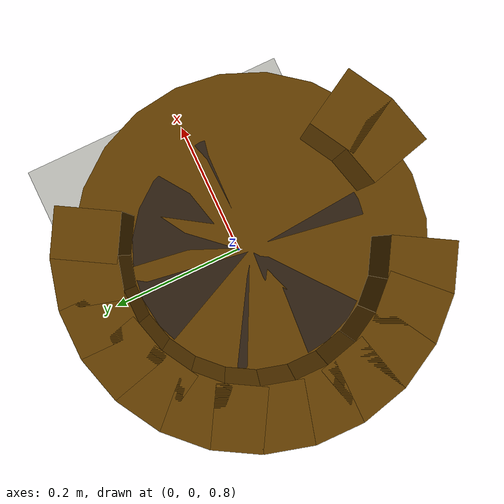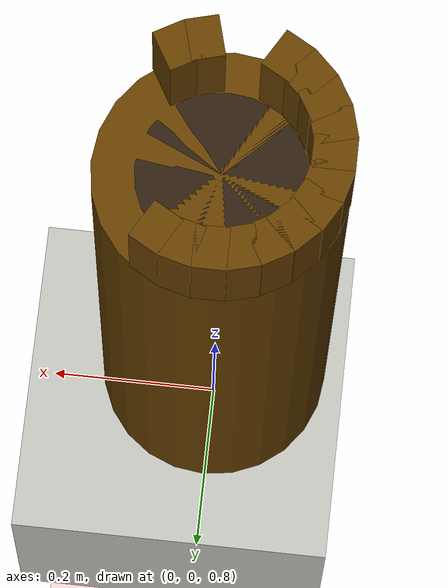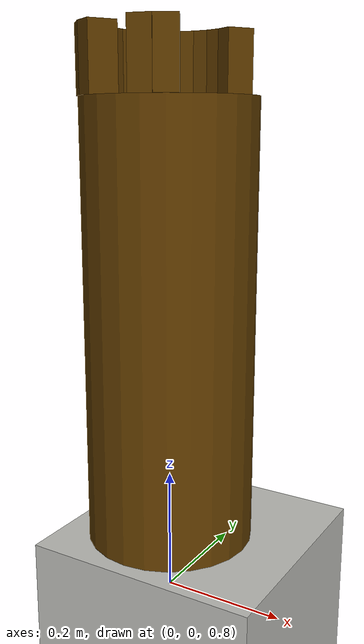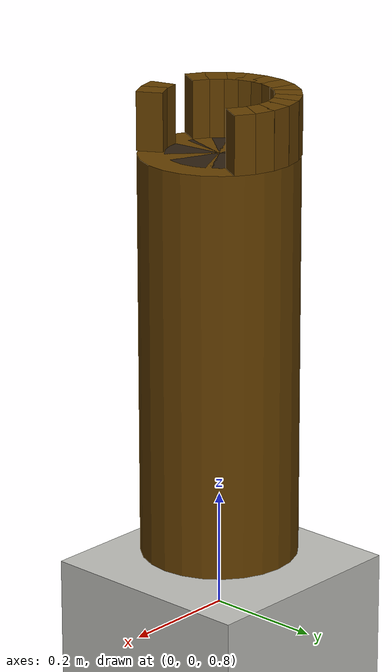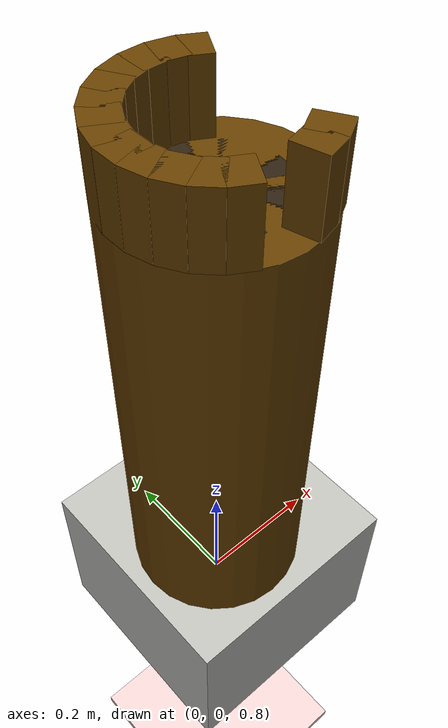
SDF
<sdf version="1.9">
 <world name="robocon_2027">
  <model name="robocon_2027_field">
   <static>true</static>
   <link name="ground_collision">
    <pose>0.000000 0.000000 -0.010000 0.000000 0.000000 0.000000</pose>
    <collision name="collision">
     <geometry><box><size>11.000000 11.000000 0.020000</size></box></geometry>
    </collision>
    <visual name="visual">
     <geometry><box><size>11.000000 11.000000 0.020000</size></box></geometry>
     <material>
      <ambient>0.941176 0.823529 0.823529 1</ambient>
      <diffuse>0.941176 0.823529 0.823529 1</diffuse>
      <specular>0.08 0.08 0.08 1</specular>
      <double_sided>true</double_sided>
     </material>
    </visual>
   </link>
   <link name="l2_platform">
    <pose>0.000000 0.000000 0.750000 0.000000 0.000000 0.000000</pose>
    <collision name="collision">
     <geometry><box><size>3.000000 3.000000 0.300000</size></box></geometry>
    </collision>
    <visual name="visual">
     <geometry><box><size>3.000000 3.000000 0.300000</size></box></geometry>
     <material>
      <ambient>0.745098 0.745098 0.725490 1</ambient>
      <diffuse>0.745098 0.745098 0.725490 1</diffuse>
      <specular>0.08 0.08 0.08 1</specular>
      <double_sided>true</double_sided>
     </material>
    </visual>
   </link>
   <link name="central_pillar_body">
    <pose>0.000000 0.000000 1.250000 0.000000 0.000000 0.000000</pose>
    <collision name="collision">
     <geometry><cylinder><radius>0.135000</radius><length>0.700000</length></cylinder></geometry>
    </collision>
    <visual name="visual">
     <geometry><cylinder><radius>0.135000</radius><length>0.700000</length></cylinder></geometry>
     <material>
      <ambient>0.392157 0.243137 0.000000 1</ambient>
      <diffuse>0.392157 0.243137 0.000000 1</diffuse>
      <specular>0.08 0.08 0.08 1</specular>
      <double_sided>true</double_sided>
     </material>
    </visual>
   </link>
   <link name="central_pillar_cup_bottom">
    <pose>0.000000 0.000000 1.595000 0.000000 0.000000 0.000000</pose>
    <collision name="collision">
     <geometry><cylinder><radius>0.090000</radius><length>0.010000</length></cylinder></geometry>
    </collision>
    <visual name="visual">
     <geometry><cylinder><radius>0.090000</radius><length>0.010000</length></cylinder></geometry>
     <material>
      <ambient>0.176471 0.121569 0.062745 1</ambient>
      <diffuse>0.176471 0.121569 0.062745 1</diffuse>
      <specular>0.08 0.08 0.08 1</specular>
      <double_sided>true</double_sided>
     </material>
    </visual>
   </link>
   <link name="central_pillar_cup_ring_04">
    <pose>0.056250 0.097428 1.650000 0.000000 0.000000 1.047198</pose>
    <collision name="collision">
     <geometry><box><size>0.045000 0.035343 0.100000</size></box></geometry>
    </collision>
    <visual name="visual">
     <geometry><box><size>0.045000 0.035343 0.100000</size></box></geometry>
     <material>
      <ambient>0.392157 0.243137 0.000000 1</ambient>
      <diffuse>0.392157 0.243137 0.000000 1</diffuse>
      <specular>0.08 0.08 0.08 1</specular>
      <double_sided>true</double_sided>
     </material>
    </visual>
   </link>
   <link name="central_pillar_cup_ring_05">
    <pose>0.029117 0.108667 1.650000 0.000000 0.000000 1.308997</pose>
    <collision name="collision">
     <geometry><box><size>0.045000 0.035343 0.100000</size></box></geometry>
    </collision>
    <visual name="visual">
     <geometry><box><size>0.045000 0.035343 0.100000</size></box></geometry>
     <material>
      <ambient>0.392157 0.243137 0.000000 1</ambient>
      <diffuse>0.392157 0.243137 0.000000 1</diffuse>
      <specular>0.08 0.08 0.08 1</specular>
      <double_sided>true</double_sided>
     </material>
    </visual>
   </link>
   <link name="central_pillar_cup_ring_06">
    <pose>0.000000 0.112500 1.650000 0.000000 0.000000 1.570796</pose>
    <collision name="collision">
     <geometry><box><size>0.045000 0.035343 0.100000</size></box></geometry>
    </collision>
    <visual name="visual">
     <geometry><box><size>0.045000 0.035343 0.100000</size></box></geometry>
     <material>
      <ambient>0.392157 0.243137 0.000000 1</ambient>
      <diffuse>0.392157 0.243137 0.000000 1</diffuse>
      <specular>0.08 0.08 0.08 1</specular>
      <double_sided>true</double_sided>
     </material>
    </visual>
   </link>
   <link name="central_pillar_cup_ring_07">
    <pose>-0.029117 0.108667 1.650000 0.000000 0.000000 1.832596</pose>
    <collision name="collision">
     <geometry><box><size>0.045000 0.035343 0.100000</size></box></geometry>
    </collision>
    <visual name="visual">
     <geometry><box><size>0.045000 0.035343 0.100000</size></box></geometry>
     <material>
      <ambient>0.392157 0.243137 0.000000 1</ambient>
      <diffuse>0.392157 0.243137 0.000000 1</diffuse>
      <specular>0.08 0.08 0.08 1</specular>
      <double_sided>true</double_sided>
     </material>
    </visual>
   </link>
   <link name="central_pillar_cup_ring_08">
    <pose>-0.056250 0.097428 1.650000 0.000000 0.000000 2.094395</pose>
    <collision name="collision">
     <geometry><box><size>0.045000 0.035343 0.100000</size></box></geometry>
    </collision>
    <visual name="visual">
     <geometry><box><size>0.045000 0.035343 0.100000</size></box></geometry>
     <material>
      <ambient>0.392157 0.243137 0.000000 1</ambient>
      <diffuse>0.392157 0.243137 0.000000 1</diffuse>
      <specular>0.08 0.08 0.08 1</specular>
      <double_sided>true</double_sided>
     </material>
    </visual>
   </link>
   <link name="central_pillar_cup_ring_09">
    <pose>-0.079550 0.079550 1.650000 0.000000 0.000000 2.356194</pose>
    <collision name="collision">
     <geometry><box><size>0.045000 0.035343 0.100000</size></box></geometry>
    </collision>
    <visual name="visual">
     <geometry><box><size>0.045000 0.035343 0.100000</size></box></geometry>
     <material>
      <ambient>0.392157 0.243137 0.000000 1</ambient>
      <diffuse>0.392157 0.243137 0.000000 1</diffuse>
      <specular>0.08 0.08 0.08 1</specular>
      <double_sided>true</double_sided>
     </material>
    </visual>
   </link>
   <link name="central_pillar_cup_ring_10">
    <pose>-0.097428 0.056250 1.650000 0.000000 0.000000 2.617994</pose>
    <collision name="collision">
     <geometry><box><size>0.045000 0.035343 0.100000</size></box></geometry>
    </collision>
    <visual name="visual">
     <geometry><box><size>0.045000 0.035343 0.100000</size></box></geometry>
     <material>
      <ambient>0.392157 0.243137 0.000000 1</ambient>
      <diffuse>0.392157 0.243137 0.000000 1</diffuse>
      <specular>0.08 0.08 0.08 1</specular>
      <double_sided>true</double_sided>
     </material>
    </visual>
   </link>
   <link name="central_pillar_cup_ring_11">
    <pose>-0.108667 0.029117 1.650000 0.000000 0.000000 2.879793</pose>
    <collision name="collision">
     <geometry><box><size>0.045000 0.035343 0.100000</size></box></geometry>
    </collision>
    <visual name="visual">
     <geometry><box><size>0.045000 0.035343 0.100000</size></box></geometry>
     <material>
      <ambient>0.392157 0.243137 0.000000 1</ambient>
      <diffuse>0.392157 0.243137 0.000000 1</diffuse>
      <specular>0.08 0.08 0.08 1</specular>
      <double_sided>true</double_sided>
     </material>
    </visual>
   </link>
   <link name="central_pillar_cup_ring_12">
    <pose>-0.112500 0.000000 1.650000 0.000000 0.000000 3.141593</pose>
    <collision name="collision">
     <geometry><box><size>0.045000 0.035343 0.100000</size></box></geometry>
    </collision>
    <visual name="visual">
     <geometry><box><size>0.045000 0.035343 0.100000</size></box></geometry>
     <material>
      <ambient>0.392157 0.243137 0.000000 1</ambient>
      <diffuse>0.392157 0.243137 0.000000 1</diffuse>
      <specular>0.08 0.08 0.08 1</specular>
      <double_sided>true</double_sided>
     </material>
    </visual>
   </link>
   <link name="central_pillar_cup_ring_13">
    <pose>-0.108667 -0.029117 1.650000 0.000000 0.000000 3.403392</pose>
    <collision name="collision">
     <geometry><box><size>0.045000 0.035343 0.100000</size></box></geometry>
    </collision>
    <visual name="visual">
     <geometry><box><size>0.045000 0.035343 0.100000</size></box></geometry>
     <material>
      <ambient>0.392157 0.243137 0.000000 1</ambient>
      <diffuse>0.392157 0.243137 0.000000 1</diffuse>
      <specular>0.08 0.08 0.08 1</specular>
      <double_sided>true</double_sided>
     </material>
    </visual>
   </link>
   <link name="central_pillar_cup_ring_14">
    <pose>-0.097428 -0.056250 1.650000 0.000000 0.000000 3.665191</pose>
    <collision name="collision">
     <geometry><box><size>0.045000 0.035343 0.100000</size></box></geometry>
    </collision>
    <visual name="visual">
     <geometry><box><size>0.045000 0.035343 0.100000</size></box></geometry>
     <material>
      <ambient>0.392157 0.243137 0.000000 1</ambient>
      <diffuse>0.392157 0.243137 0.000000 1</diffuse>
      <specular>0.08 0.08 0.08 1</specular>
      <double_sided>true</double_sided>
     </material>
    </visual>
   </link>
   <link name="central_pillar_cup_ring_15">
    <pose>-0.079550 -0.079550 1.650000 0.000000 0.000000 3.926991</pose>
    <collision name="collision">
     <geometry><box><size>0.045000 0.035343 0.100000</size></box></geometry>
    </collision>
    <visual name="visual">
     <geometry><box><size>0.045000 0.035343 0.100000</size></box></geometry>
     <material>
      <ambient>0.392157 0.243137 0.000000 1</ambient>
      <diffuse>0.392157 0.243137 0.000000 1</diffuse>
      <specular>0.08 0.08 0.08 1</specular>
      <double_sided>true</double_sided>
     </material>
    </visual>
   </link>
   <link name="central_pillar_cup_ring_16">
    <pose>-0.056250 -0.097428 1.650000 0.000000 0.000000 4.188790</pose>
    <collision name="collision">
     <geometry><box><size>0.045000 0.035343 0.100000</size></box></geometry>
    </collision>
    <visual name="visual">
     <geometry><box><size>0.045000 0.035343 0.100000</size></box></geometry>
     <material>
      <ambient>0.392157 0.243137 0.000000 1</ambient>
      <diffuse>0.392157 0.243137 0.000000 1</diffuse>
      <specular>0.08 0.08 0.08 1</specular>
      <double_sided>true</double_sided>
     </material>
    </visual>
   </link>
   <link name="central_pillar_cup_ring_19">
    <pose>0.029117 -0.108667 1.650000 0.000000 0.000000 4.974188</pose>
    <collision name="collision">
     <geometry><box><size>0.045000 0.035343 0.100000</size></box></geometry>
    </collision>
    <visual name="visual">
     <geometry><box><size>0.045000 0.035343 0.100000</size></box></geometry>
     <material>
      <ambient>0.392157 0.243137 0.000000 1</ambient>
      <diffuse>0.392157 0.243137 0.000000 1</diffuse>
      <specular>0.08 0.08 0.08 1</specular>
      <double_sided>true</double_sided>
     </material>
    </visual>
   </link>
   <link name="central_pillar_cup_ring_20">
    <pose>0.056250 -0.097428 1.650000 0.000000 0.000000 5.235988</pose>
    <collision name="collision">
     <geometry><box><size>0.045000 0.035343 0.100000</size></box></geometry>
    </collision>
    <visual name="visual">
     <geometry><box><size>0.045000 0.035343 0.100000</size></box></geometry>
     <material>
      <ambient>0.392157 0.243137 0.000000 1</ambient>
      <diffuse>0.392157 0.243137 0.000000 1</diffuse>
      <specular>0.08 0.08 0.08 1</specular>
      <double_sided>true</double_sided>
     </material>
    </visual>
   </link>
  </model>
 </world>
</sdf>
